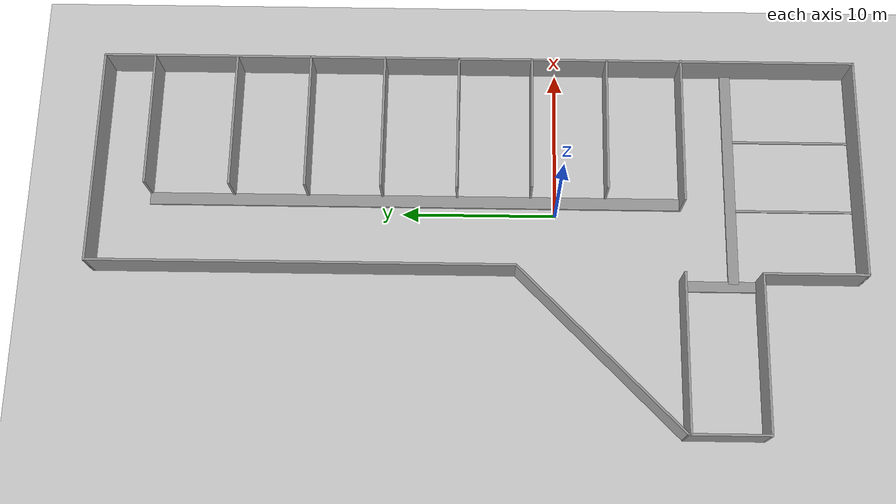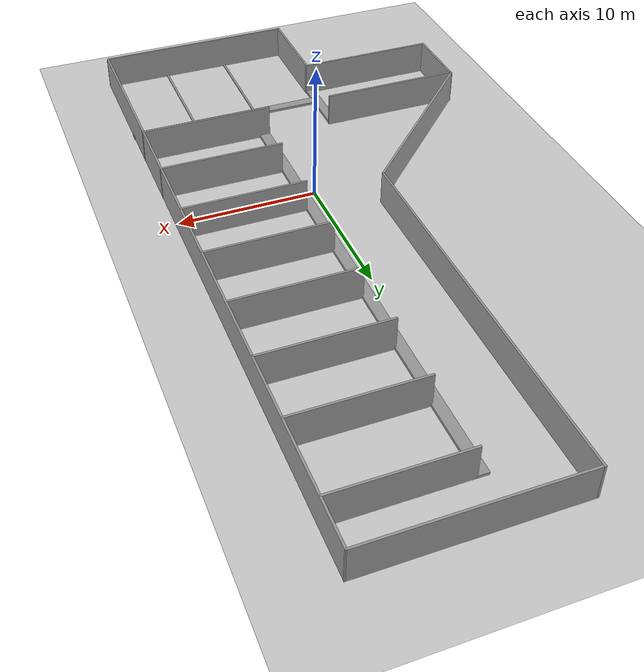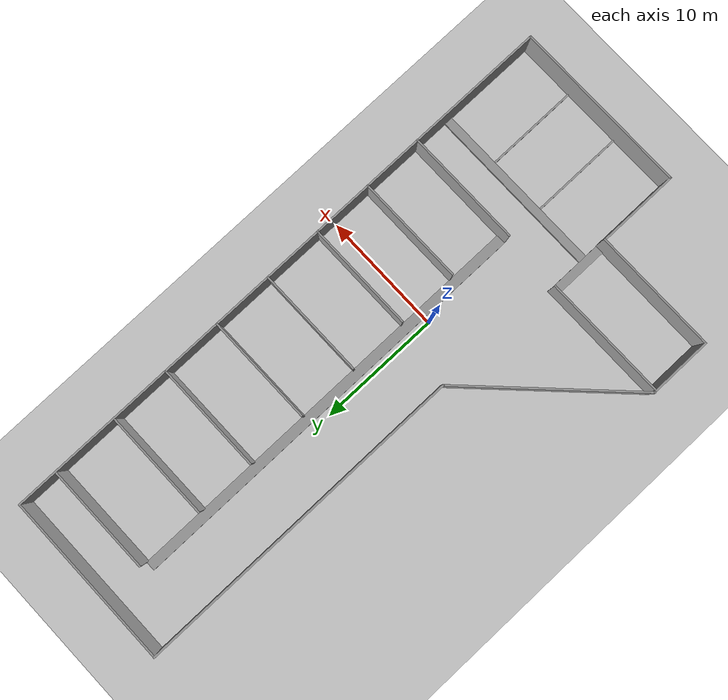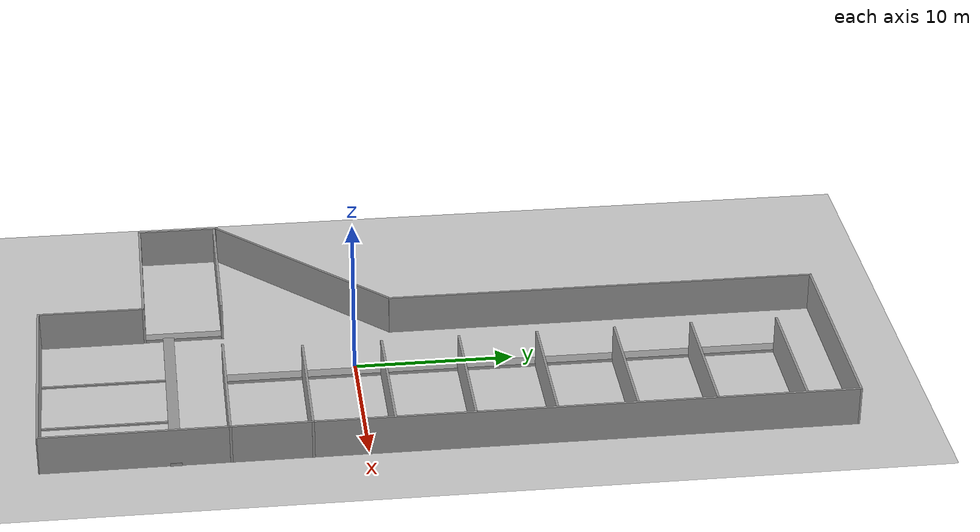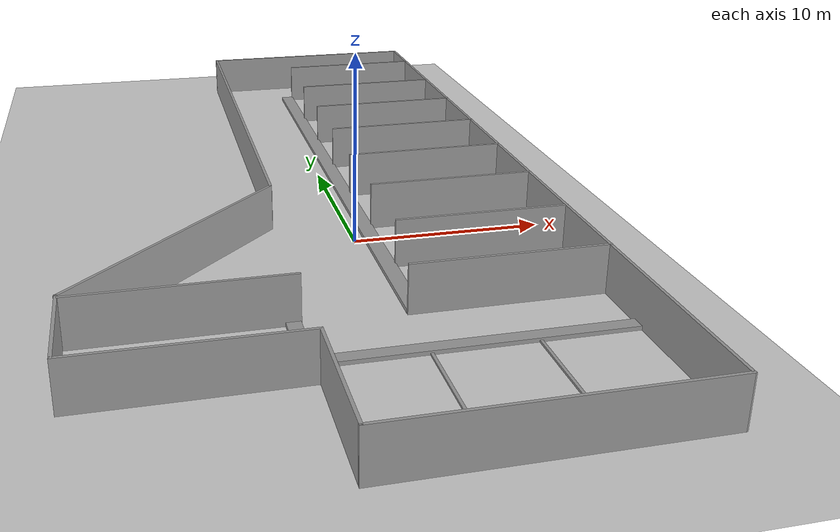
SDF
<sdf version="1.6">
 <world name="default">
  <light name="sun" type="directional">
   <pose>0 0 10 0 -0 0</pose>
   <diffuse>0.8 0.8 0.8 1</diffuse>
   <specular>0.2 0.2 0.2 1</specular>
   <attenuation>
    <range>1000</range>
    <constant>0.9</constant>
    <linear>0.01</linear>
    <quadratic>0.001</quadratic>
   </attenuation>
   <direction>-0.5 0.1 -0.9</direction>
  </light>
  <model name="ground_plane">
   <static>1</static>
   <link name="link">
    <collision name="collision">
     <geometry><plane><normal>0 0 1</normal><size>100 100</size></plane></geometry>
     <surface>
      <contact><collide_bitmask>65535</collide_bitmask></contact>
      <friction><ode><mu>100</mu><mu2>50</mu2></ode></friction>
     </surface>
    </collision>
    <visual name="visual">
     <cast_shadows>0</cast_shadows>
     <geometry><plane><normal>0 0 1</normal><size>100 100</size></plane></geometry>
     <material>
      <script><uri>file://media/materials/scripts/gazebo.material</uri><name>Gazebo/Grey</name></script>
     </material>
    </visual>
   </link>
  </model>
  <gravity>0 0 -9.8</gravity>
  <magnetic_field>6e-06 2.3e-05 -4.2e-05</magnetic_field>
  <atmosphere type="adiabatic"/>
  <physics name="default_physics" default="0" type="ode">
   <max_step_size>0.001</max_step_size>
   <real_time_factor>1</real_time_factor>
   <real_time_update_rate>1000</real_time_update_rate>
  </physics>
  <scene><ambient>0.4 0.4 0.4 1</ambient><background>0.7 0.7 0.7 1</background><shadows>1</shadows></scene>
  <audio><device>default</device></audio>
  <spherical_coordinates>
   <surface_model>EARTH_WGS84</surface_model>
   <latitude_deg>0</latitude_deg>
   <longitude_deg>0</longitude_deg>
   <elevation>0</elevation>
   <heading_deg>0</heading_deg>
  </spherical_coordinates>
  <model name="test__">
   <pose>-2.19585 5.14797 0 0 -0 0</pose>
   <link name="Wall_1">
    <collision name="Wall_1_Collision">
     <geometry><box><size>15 0.15 2.5</size></box></geometry>
     <pose>0 0 1.25 0 -0 0</pose>
    </collision>
    <visual name="Wall_1_Visual">
     <pose>0 0 1.25 0 -0 0</pose>
     <geometry><box><size>15 0.15 2.5</size></box></geometry>
     <material>
      <script><uri>file://media/materials/scripts/gazebo.material</uri><name>Gazebo/Grey</name></script>
      <ambient>1 1 1 1</ambient>
     </material>
     <meta><layer>0</layer></meta>
    </visual>
    <pose>-7.10691 -7.85176 0 0 -0 -2.35619</pose>
   </link>
   <link name="Wall_11">
    <collision name="Wall_11_Collision">
     <geometry><box><size>14.3012 0.15 2.5</size></box></geometry>
     <pose>0 0 1.25 0 -0 0</pose>
    </collision>
    <visual name="Wall_11_Visual">
     <pose>0 0 1.25 0 -0 0</pose>
     <geometry><box><size>14.3012 0.15 2.5</size></box></geometry>
     <material>
      <script><uri>file://media/materials/scripts/gazebo.material</uri><name>Gazebo/Grey</name></script>
      <ambient>1 1 1 1</ambient>
     </material>
     <meta><layer>0</layer></meta>
    </visual>
    <pose>5.26724 24.8122 0 0 -0 3.13958</pose>
   </link>
   <link name="Wall_12">
    <collision name="Wall_12_Collision">
     <geometry><box><size>27.5 0.15 2.5</size></box></geometry>
     <pose>0 0 1.25 0 -0 0</pose>
    </collision>
    <visual name="Wall_12_Visual">
     <pose>0 0 1.25 0 -0 0</pose>
     <geometry><box><size>27.5 0.15 2.5</size></box></geometry>
     <material>
      <script><uri>file://media/materials/scripts/gazebo.material</uri><name>Gazebo/Grey</name></script>
      <ambient>1 1 1 1</ambient>
     </material>
     <meta><layer>0</layer></meta>
    </visual>
    <pose>-1.80834 11.1571 0 0 -0 -1.5708</pose>
   </link>
   <link name="Wall_21">
    <collision name="Wall_21_Collision">
     <geometry><box><size>10.2504 0.15 2.5</size></box></geometry>
     <pose>0 0 1.25 0 -0 0</pose>
    </collision>
    <visual name="Wall_21_Visual">
     <pose>0 0 1.25 0 -0 0</pose>
     <geometry><box><size>10.2504 0.15 2.5</size></box></geometry>
     <material>
      <script><uri>file://media/materials/scripts/gazebo.material</uri><name>Gazebo/Grey</name></script>
      <ambient>1 1 1 1</ambient>
     </material>
     <meta><layer>0</layer></meta>
    </visual>
    <pose>-7.21776 -13.2674 0 0 -0 -3.14011</pose>
   </link>
   <link name="Wall_25">
    <collision name="Wall_25_Collision">
     <geometry><box><size>8.5 0.15 0.1</size></box></geometry>
     <pose>0 0 0.05 0 -0 0</pose>
    </collision>
    <visual name="Wall_25_Visual">
     <pose>0 0 0.05 0 -0 0</pose>
     <geometry><box><size>8.5 0.15 0.1</size></box></geometry>
     <material>
      <script><uri>file://media/materials/scripts/gazebo.material</uri><name>Gazebo/Grey</name></script>
      <ambient>1 1 1 1</ambient>
     </material>
     <meta><layer>0</layer></meta>
    </visual>
    <pose>2.73219 -20.5989 0 0 -0 -1.5708</pose>
   </link>
   <link name="Wall_27">
    <collision name="Wall_27_Collision">
     <geometry><box><size>8.5 0.15 0.1</size></box></geometry>
     <pose>0 0 0.05 0 -0 0</pose>
    </collision>
    <visual name="Wall_27_Visual">
     <pose>0 0 0.05 0 -0 0</pose>
     <geometry><box><size>8.5 0.15 0.1</size></box></geometry>
     <material>
      <script><uri>file://media/materials/scripts/gazebo.material</uri><name>Gazebo/Grey</name></script>
      <ambient>1 1 1 1</ambient>
     </material>
     <meta><layer>0</layer></meta>
    </visual>
    <pose>7.59109 -20.6044 0 0 -0 -1.5708</pose>
   </link>
   <link name="Wall_29">
    <collision name="Wall_29_Collision">
     <geometry><box><size>9.75 0.15 2.5</size></box></geometry>
     <pose>0 0 1.25 0 -0 0</pose>
    </collision>
    <visual name="Wall_29_Visual">
     <pose>0 0 1.25 0 -0 0</pose>
     <geometry><box><size>9.75 0.15 2.5</size></box></geometry>
     <material>
      <script><uri>file://media/materials/scripts/gazebo.material</uri><name>Gazebo/Grey</name></script>
      <ambient>1 1 1 1</ambient>
     </material>
     <meta><layer>0</layer></meta>
    </visual>
    <pose>7.56587 -13.406 0 0 -0 3.14159</pose>
   </link>
   <link name="Wall_3">
    <collision name="Wall_3_Collision">
     <geometry><box><size>5.25 0.15 2.5</size></box></geometry>
     <pose>0 0 1.25 0 -0 0</pose>
    </collision>
    <visual name="Wall_3_Visual">
     <pose>0 0 1.25 0 -0 0</pose>
     <geometry><box><size>5.25 0.15 2.5</size></box></geometry>
     <material>
      <script><uri>file://media/materials/scripts/gazebo.material</uri><name>Gazebo/Grey</name></script>
      <ambient>1 1 1 1</ambient>
     </material>
     <meta><layer>0</layer></meta>
    </visual>
    <pose>-12.3572 -15.652 0 0 -0 -1.5708</pose>
   </link>
   <link name="Wall_31">
    <collision name="Wall_31_Collision">
     <geometry><box><size>34.9 0.8 0.2</size></box></geometry>
     <pose>0 0 0.1 0 -0 0</pose>
    </collision>
    <visual name="Wall_31_Visual">
     <pose>0 0 0.1 0 -0 0</pose>
     <geometry><box><size>34.9 0.8 0.2</size></box></geometry>
     <material>
      <script><uri>file://media/materials/scripts/gazebo.material</uri><name>Gazebo/Grey</name></script>
      <ambient>1 1 1 1</ambient>
     </material>
     <meta><layer>0</layer></meta>
    </visual>
    <pose>3.07724 4.10911 0 0 -0 1.5708</pose>
   </link>
   <link name="Wall_33">
    <collision name="Wall_33_Collision">
     <geometry><box><size>9 0.15 2.5</size></box></geometry>
     <pose>0 0 1.25 0 -0 0</pose>
    </collision>
    <visual name="Wall_33_Visual">
     <pose>0 0 1.25 0 -0 0</pose>
     <geometry><box><size>9 0.15 2.5</size></box></geometry>
     <material>
      <script><uri>file://media/materials/scripts/gazebo.material</uri><name>Gazebo/Grey</name></script>
      <ambient>1 1 1 1</ambient>
     </material>
     <meta><layer>0</layer></meta>
    </visual>
    <pose>7.93132 -8.48567 0 0 -0 0</pose>
   </link>
   <link name="Wall_35">
    <collision name="Wall_35_Collision">
     <geometry><box><size>9 0.15 2.5</size></box></geometry>
     <pose>0 0 1.25 0 -0 0</pose>
    </collision>
    <visual name="Wall_35_Visual">
     <pose>0 0 1.25 0 -0 0</pose>
     <geometry><box><size>9 0.15 2.5</size></box></geometry>
     <material>
      <script><uri>file://media/materials/scripts/gazebo.material</uri><name>Gazebo/Grey</name></script>
      <ambient>1 1 1 1</ambient>
     </material>
     <meta><layer>0</layer></meta>
    </visual>
    <pose>7.91645 -3.54945 0 0 -0 0</pose>
   </link>
   <link name="Wall_37">
    <collision name="Wall_37_Collision">
     <geometry><box><size>9 0.15 2.5</size></box></geometry>
     <pose>0 0 1.25 0 -0 0</pose>
    </collision>
    <visual name="Wall_37_Visual">
     <pose>0 0 1.25 0 -0 0</pose>
     <geometry><box><size>9 0.15 2.5</size></box></geometry>
     <material>
      <script><uri>file://media/materials/scripts/gazebo.material</uri><name>Gazebo/Grey</name></script>
      <ambient>1 1 1 1</ambient>
     </material>
     <meta><layer>0</layer></meta>
    </visual>
    <pose>7.85698 1.29757 0 0 -0 0</pose>
   </link>
   <link name="Wall_39">
    <collision name="Wall_39_Collision">
     <geometry><box><size>9 0.15 2.5</size></box></geometry>
     <pose>0 0 1.25 0 -0 0</pose>
    </collision>
    <visual name="Wall_39_Visual">
     <pose>0 0 1.25 0 -0 0</pose>
     <geometry><box><size>9 0.15 2.5</size></box></geometry>
     <material>
      <script><uri>file://media/materials/scripts/gazebo.material</uri><name>Gazebo/Grey</name></script>
      <ambient>1 1 1 1</ambient>
     </material>
     <meta><layer>0</layer></meta>
    </visual>
    <pose>7.88083 6.21966 0 0 -0 0</pose>
   </link>
   <link name="Wall_4">
    <collision name="Wall_4_Collision">
     <geometry><box><size>10.3399 0.15 2.5</size></box></geometry>
     <pose>0 0 1.25 0 -0 0</pose>
    </collision>
    <visual name="Wall_4_Visual">
     <pose>0 0 1.25 0 -0 0</pose>
     <geometry><box><size>10.3399 0.15 2.5</size></box></geometry>
     <material>
      <script><uri>file://media/materials/scripts/gazebo.material</uri><name>Gazebo/Grey</name></script>
      <ambient>1 1 1 1</ambient>
     </material>
     <meta><layer>0</layer></meta>
    </visual>
    <pose>-7.26247 -18.202 0 0 -0 1.4e-05</pose>
   </link>
   <link name="Wall_41">
    <collision name="Wall_41_Collision">
     <geometry><box><size>9 0.15 2.5</size></box></geometry>
     <pose>0 0 1.25 0 -0 0</pose>
    </collision>
    <visual name="Wall_41_Visual">
     <pose>0 0 1.25 0 -0 0</pose>
     <geometry><box><size>9 0.15 2.5</size></box></geometry>
     <material>
      <script><uri>file://media/materials/scripts/gazebo.material</uri><name>Gazebo/Grey</name></script>
      <ambient>1 1 1 1</ambient>
     </material>
     <meta><layer>0</layer></meta>
    </visual>
    <pose>7.88083 11.1256 0 0 -0 0</pose>
   </link>
   <link name="Wall_43">
    <collision name="Wall_43_Collision">
     <geometry><box><size>9 0.15 2.5</size></box></geometry>
     <pose>0 0 1.25 0 -0 0</pose>
    </collision>
    <visual name="Wall_43_Visual">
     <pose>0 0 1.25 0 -0 0</pose>
     <geometry><box><size>9 0.15 2.5</size></box></geometry>
     <material>
      <script><uri>file://media/materials/scripts/gazebo.material</uri><name>Gazebo/Grey</name></script>
      <ambient>1 1 1 1</ambient>
     </material>
     <meta><layer>0</layer></meta>
    </visual>
    <pose>7.88083 16.0119 0 0 -0 0</pose>
   </link>
   <link name="Wall_45">
    <collision name="Wall_45_Collision">
     <geometry><box><size>9 0.15 2.5</size></box></geometry>
     <pose>0 0 1.25 0 -0 0</pose>
    </collision>
    <visual name="Wall_45_Visual">
     <pose>0 0 1.25 0 -0 0</pose>
     <geometry><box><size>9 0.15 2.5</size></box></geometry>
     <material>
      <script><uri>file://media/materials/scripts/gazebo.material</uri><name>Gazebo/Grey</name></script>
      <ambient>1 1 1 1</ambient>
     </material>
     <meta><layer>0</layer></meta>
    </visual>
    <pose>7.91033 21.4782 0 0 -0 0</pose>
   </link>
   <link name="Wall_49">
    <collision name="Wall_49_Collision">
     <geometry><box><size>5 0.7 0.2</size></box></geometry>
     <pose>0 0 0.1 0 -0 0</pose>
    </collision>
    <visual name="Wall_49_Visual">
     <pose>0 0 0.1 0 -0 0</pose>
     <geometry><box><size>5 0.7 0.2</size></box></geometry>
     <material>
      <script><uri>file://media/materials/scripts/gazebo.material</uri><name>Gazebo/Grey</name></script>
      <ambient>1 1 1 1</ambient>
     </material>
     <meta><layer>0</layer></meta>
    </visual>
    <pose>-2.47472 -15.7158 0 0 -0 1.5708</pose>
   </link>
   <link name="Wall_51">
    <collision name="Wall_51_Collision">
     <geometry><box><size>14.75 0.7 0.2</size></box></geometry>
     <pose>0 0 0.1 0 -0 0</pose>
    </collision>
    <visual name="Wall_51_Visual">
     <pose>0 0 0.1 0 -0 0</pose>
     <geometry><box><size>14.75 0.7 0.2</size></box></geometry>
     <material>
      <script><uri>file://media/materials/scripts/gazebo.material</uri><name>Gazebo/Grey</name></script>
      <ambient>1 1 1 1</ambient>
     </material>
     <meta><layer>0</layer></meta>
    </visual>
    <pose>5.08824 -16.7089 0 0 -0 0</pose>
   </link>
   <link name="Wall_7">
    <collision name="Wall_7_Collision">
     <geometry><box><size>6.75 0.15 2.5</size></box></geometry>
     <pose>0 0 1.25 0 -0 0</pose>
    </collision>
    <visual name="Wall_7_Visual">
     <pose>0 0 1.25 0 -0 0</pose>
     <geometry><box><size>6.75 0.15 2.5</size></box></geometry>
     <material>
      <script><uri>file://media/materials/scripts/gazebo.material</uri><name>Gazebo/Grey</name></script>
      <ambient>1 1 1 1</ambient>
     </material>
     <meta><layer>0</layer></meta>
    </visual>
    <pose>-2.16761 -21.502 0 0 -0 -1.57075</pose>
   </link>
   <link name="Wall_8">
    <collision name="Wall_8_Collision">
     <geometry><box><size>14.6604 0.15 2.5</size></box></geometry>
     <pose>0 0 1.25 0 -0 0</pose>
    </collision>
    <visual name="Wall_8_Visual">
     <pose>0 0 1.25 0 -0 0</pose>
     <geometry><box><size>14.6604 0.15 2.5</size></box></geometry>
     <material>
      <script><uri>file://media/materials/scripts/gazebo.material</uri><name>Gazebo/Grey</name></script>
      <ambient>1 1 1 1</ambient>
     </material>
     <meta><layer>0</layer></meta>
    </visual>
    <pose>5.08768 -24.817 0 0 -0 0.002061</pose>
   </link>
   <link name="Wall_9">
    <collision name="Wall_9_Collision">
     <geometry><box><size>49.75 0.15 2.5</size></box></geometry>
     <pose>0 0 1.25 0 -0 0</pose>
    </collision>
    <visual name="Wall_9_Visual">
     <pose>0 0 1.25 0 -0 0</pose>
     <geometry><box><size>49.75 0.15 2.5</size></box></geometry>
     <material>
      <script><uri>file://media/materials/scripts/gazebo.material</uri><name>Gazebo/Grey</name></script>
      <ambient>1 1 1 1</ambient>
     </material>
     <meta><layer>0</layer></meta>
    </visual>
    <pose>12.3428 -0.002026 0 0 -0 1.5708</pose>
   </link>
   <static>1</static>
  </model>
 </world>
</sdf>
